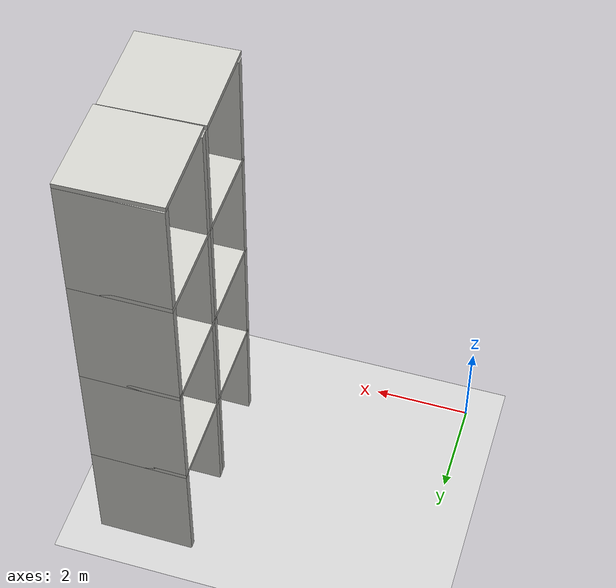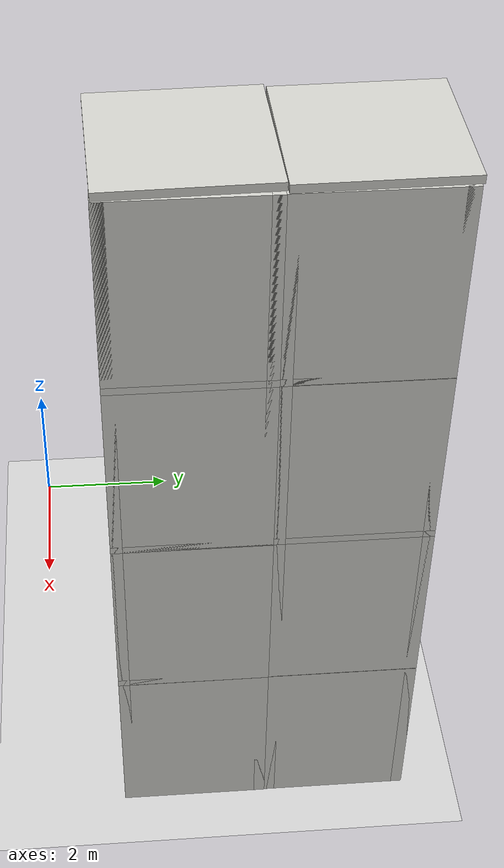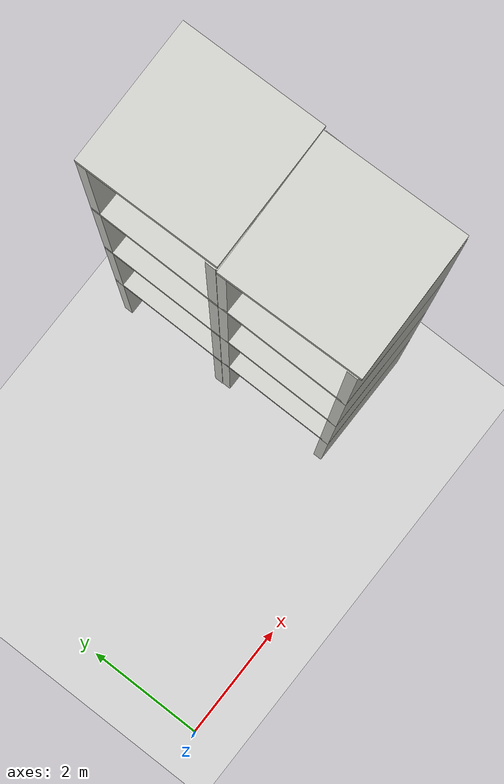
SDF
<sdf version="1.7">
 <world name="default">
  <model name="ground_plane">
   <static>1</static>
   <link name="link">
    <collision name="collision">
     <geometry><plane><normal>0 0 1</normal><size>100 100</size></plane></geometry>
     <surface>
      <contact><collide_bitmask>65535</collide_bitmask></contact>
      <friction><ode><mu>100</mu><mu2>50</mu2></ode></friction>
     </surface>
    </collision>
    <visual name="visual">
     <cast_shadows>0</cast_shadows>
     <geometry><plane><normal>0 0 1</normal><size>100 100</size></plane></geometry>
     <material>
      <script><uri>file://media/materials/scripts/gazebo.material</uri><name>Gazebo/Grey</name></script>
     </material>
    </visual>
   </link>
  </model>
  <model name="twin_4th_building_clone_clone">
   <link name="Floor_1">
    <pose>-1.9225 -0.6325 2.5 0 -0 0</pose>
    <visual name="Floor_1_Visual">
     <pose>0 0 0.05 0 -0 0</pose>
     <geometry><box><size>2 2 0.1</size></box></geometry>
     <material>
      <script><uri>file://media/materials/scripts/gazebo.material</uri><name>Gazebo/CeilingTiled</name></script>
      <ambient>1 1 1 1</ambient>
      <shader type="pixel"/>
      <emissive>0 0 0 1</emissive>
     </material>
     <meta><layer>1</layer></meta>
    </visual>
    <collision name="Floor_1_Collision">
     <pose>0 0 0.05 0 -0 0</pose>
     <geometry><box><size>2 2 0.1</size></box></geometry>
     <surface>
      <friction>
       <ode><mu>1</mu><mu2>1</mu2><fdir1>0 0 0</fdir1><slip1>0</slip1><slip2>0</slip2></ode>
       <torsional>
        <coefficient>1</coefficient>
        <patch_radius>0</patch_radius>
        <surface_radius>0</surface_radius>
        <use_patch_radius>1</use_patch_radius>
        <ode><slip>0</slip></ode>
       </torsional>
      </friction>
      <bounce><restitution_coefficient>0</restitution_coefficient><threshold>1e+06</threshold></bounce>
      <contact>
       <collide_without_contact>0</collide_without_contact>
       <collide_without_contact_bitmask>1</collide_without_contact_bitmask>
       <collide_bitmask>1</collide_bitmask>
       <ode>
        <soft_cfm>0</soft_cfm>
        <soft_erp>0.2</soft_erp>
        <kp>1e+13</kp>
        <kd>1</kd>
        <max_vel>0.01</max_vel>
        <min_depth>0</min_depth>
       </ode>
       <bullet>
        <split_impulse>1</split_impulse>
        <split_impulse_penetration_threshold>-0.01</split_impulse_penetration_threshold>
        <soft_cfm>0</soft_cfm>
        <soft_erp>0.2</soft_erp>
        <kp>1e+13</kp>
        <kd>1</kd>
       </bullet>
      </contact>
     </surface>
    </collision>
   </link>
   <link name="Floor_10">
    <pose>-1.9225 -0.6325 7.5 0 -0 0</pose>
    <visual name="Floor_10_Visual">
     <pose>0 0 0.05 0 -0 0</pose>
     <geometry><box><size>2 2 0.1</size></box></geometry>
     <material>
      <script><uri>file://media/materials/scripts/gazebo.material</uri><name>Gazebo/CeilingTiled</name></script>
      <ambient>1 1 1 1</ambient>
      <shader type="pixel"/>
      <emissive>0 0 0 1</emissive>
     </material>
     <meta><layer>3</layer></meta>
    </visual>
    <collision name="Floor_10_Collision">
     <pose>0 0 0.05 0 -0 0</pose>
     <geometry><box><size>2 2 0.1</size></box></geometry>
     <surface>
      <friction>
       <ode><mu>1</mu><mu2>1</mu2><fdir1>0 0 0</fdir1><slip1>0</slip1><slip2>0</slip2></ode>
       <torsional>
        <coefficient>1</coefficient>
        <patch_radius>0</patch_radius>
        <surface_radius>0</surface_radius>
        <use_patch_radius>1</use_patch_radius>
        <ode><slip>0</slip></ode>
       </torsional>
      </friction>
      <bounce><restitution_coefficient>0</restitution_coefficient><threshold>1e+06</threshold></bounce>
      <contact>
       <collide_without_contact>0</collide_without_contact>
       <collide_without_contact_bitmask>1</collide_without_contact_bitmask>
       <collide_bitmask>1</collide_bitmask>
       <ode>
        <soft_cfm>0</soft_cfm>
        <soft_erp>0.2</soft_erp>
        <kp>1e+13</kp>
        <kd>1</kd>
        <max_vel>0.01</max_vel>
        <min_depth>0</min_depth>
       </ode>
       <bullet>
        <split_impulse>1</split_impulse>
        <split_impulse_penetration_threshold>-0.01</split_impulse_penetration_threshold>
        <soft_cfm>0</soft_cfm>
        <soft_erp>0.2</soft_erp>
        <kp>1e+13</kp>
        <kd>1</kd>
       </bullet>
      </contact>
     </surface>
    </collision>
   </link>
   <link name="Floor_10_clone">
    <pose>-1.91647 -0.637292 10.0203 0 0 -1.55375</pose>
    <visual name="Floor_10_Visual">
     <pose>0 0 0.05 0 -0 0</pose>
     <geometry><box><size>2 2 0.1</size></box></geometry>
     <material>
      <script><uri>file://media/materials/scripts/gazebo.material</uri><name>Gazebo/CeilingTiled</name></script>
      <ambient>1 1 1 1</ambient>
      <shader type="pixel"/>
      <emissive>0 0 0 1</emissive>
     </material>
     <meta><layer>3</layer></meta>
    </visual>
    <collision name="Floor_10_Collision">
     <pose>0 0 0.05 0 -0 0</pose>
     <geometry><box><size>2 2 0.1</size></box></geometry>
     <surface>
      <friction>
       <ode><mu>1</mu><mu2>1</mu2><fdir1>0 0 0</fdir1><slip1>0</slip1><slip2>0</slip2></ode>
       <torsional>
        <coefficient>1</coefficient>
        <patch_radius>0</patch_radius>
        <surface_radius>0</surface_radius>
        <use_patch_radius>1</use_patch_radius>
        <ode><slip>0</slip></ode>
       </torsional>
      </friction>
      <bounce><restitution_coefficient>0</restitution_coefficient><threshold>1e+06</threshold></bounce>
      <contact>
       <collide_without_contact>0</collide_without_contact>
       <collide_without_contact_bitmask>1</collide_without_contact_bitmask>
       <collide_bitmask>1</collide_bitmask>
       <ode>
        <soft_cfm>0</soft_cfm>
        <soft_erp>0.2</soft_erp>
        <kp>1e+13</kp>
        <kd>1</kd>
        <max_vel>0.01</max_vel>
        <min_depth>0</min_depth>
       </ode>
       <bullet>
        <split_impulse>1</split_impulse>
        <split_impulse_penetration_threshold>-0.01</split_impulse_penetration_threshold>
        <soft_cfm>0</soft_cfm>
        <soft_erp>0.2</soft_erp>
        <kp>1e+13</kp>
        <kd>1</kd>
       </bullet>
      </contact>
     </surface>
    </collision>
   </link>
   <link name="Floor_10_clone_clone">
    <pose>-3.93376 -0.629613 10.0203 0 0 -3.11619</pose>
    <visual name="Floor_10_Visual">
     <pose>0 0 0.05 0 -0 0</pose>
     <geometry><box><size>2 2 0.1</size></box></geometry>
     <material>
      <script><uri>file://media/materials/scripts/gazebo.material</uri><name>Gazebo/CeilingTiled</name></script>
      <ambient>1 1 1 1</ambient>
      <shader type="pixel"/>
      <emissive>0 0 0 1</emissive>
     </material>
     <meta><layer>3</layer></meta>
    </visual>
    <collision name="Floor_10_Collision">
     <pose>0 0 0.05 0 -0 0</pose>
     <geometry><box><size>2 2 0.1</size></box></geometry>
     <surface>
      <friction>
       <ode><mu>1</mu><mu2>1</mu2><fdir1>0 0 0</fdir1><slip1>0</slip1><slip2>0</slip2></ode>
       <torsional>
        <coefficient>1</coefficient>
        <patch_radius>0</patch_radius>
        <surface_radius>0</surface_radius>
        <use_patch_radius>1</use_patch_radius>
        <ode><slip>0</slip></ode>
       </torsional>
      </friction>
      <bounce><restitution_coefficient>0</restitution_coefficient><threshold>1e+06</threshold></bounce>
      <contact>
       <collide_without_contact>0</collide_without_contact>
       <collide_without_contact_bitmask>1</collide_without_contact_bitmask>
       <collide_bitmask>1</collide_bitmask>
       <ode>
        <soft_cfm>0</soft_cfm>
        <soft_erp>0.2</soft_erp>
        <kp>1e+13</kp>
        <kd>1</kd>
        <max_vel>0.01</max_vel>
        <min_depth>0</min_depth>
       </ode>
       <bullet>
        <split_impulse>1</split_impulse>
        <split_impulse_penetration_threshold>-0.01</split_impulse_penetration_threshold>
        <soft_cfm>0</soft_cfm>
        <soft_erp>0.2</soft_erp>
        <kp>1e+13</kp>
        <kd>1</kd>
       </bullet>
      </contact>
     </surface>
    </collision>
   </link>
   <link name="Floor_9">
    <pose>-1.9225 -0.6325 5 0 -0 0</pose>
    <visual name="Floor_9_Visual">
     <pose>0 0 0.05 0 -0 0</pose>
     <geometry><box><size>2 2 0.1</size></box></geometry>
     <material>
      <script><uri>file://media/materials/scripts/gazebo.material</uri><name>Gazebo/CeilingTiled</name></script>
      <ambient>1 1 1 1</ambient>
      <shader type="pixel"/>
      <emissive>0 0 0 1</emissive>
     </material>
     <meta><layer>2</layer></meta>
    </visual>
    <collision name="Floor_9_Collision">
     <pose>0 0 0.05 0 -0 0</pose>
     <geometry><box><size>2 2 0.1</size></box></geometry>
     <surface>
      <friction>
       <ode><mu>1</mu><mu2>1</mu2><fdir1>0 0 0</fdir1><slip1>0</slip1><slip2>0</slip2></ode>
       <torsional>
        <coefficient>1</coefficient>
        <patch_radius>0</patch_radius>
        <surface_radius>0</surface_radius>
        <use_patch_radius>1</use_patch_radius>
        <ode><slip>0</slip></ode>
       </torsional>
      </friction>
      <bounce><restitution_coefficient>0</restitution_coefficient><threshold>1e+06</threshold></bounce>
      <contact>
       <collide_without_contact>0</collide_without_contact>
       <collide_without_contact_bitmask>1</collide_without_contact_bitmask>
       <collide_bitmask>1</collide_bitmask>
       <ode>
        <soft_cfm>0</soft_cfm>
        <soft_erp>0.2</soft_erp>
        <kp>1e+13</kp>
        <kd>1</kd>
        <max_vel>0.01</max_vel>
        <min_depth>0</min_depth>
       </ode>
       <bullet>
        <split_impulse>1</split_impulse>
        <split_impulse_penetration_threshold>-0.01</split_impulse_penetration_threshold>
        <soft_cfm>0</soft_cfm>
        <soft_erp>0.2</soft_erp>
        <kp>1e+13</kp>
        <kd>1</kd>
       </bullet>
      </contact>
     </surface>
    </collision>
   </link>
   <link name="Wall_13">
    <pose>-2.8475 -0.6325 0 0 0 -1.5708</pose>
    <visual name="Wall_13_Visual">
     <pose>0 0 1.25 0 -0 0</pose>
     <geometry><box><size>2 0.15 2.5</size></box></geometry>
     <material>
      <script><uri>file://media/materials/scripts/gazebo.material</uri><name>Gazebo/CeilingTiled</name></script>
      <ambient>1 1 1 1</ambient>
      <shader type="pixel"/>
      <emissive>0 0 0 1</emissive>
     </material>
     <meta><layer>0</layer></meta>
    </visual>
    <collision name="Wall_13_Collision">
     <pose>0 0 1.25 0 -0 0</pose>
     <geometry><box><size>2 0.15 2.5</size></box></geometry>
     <surface>
      <friction>
       <ode><mu>1</mu><mu2>1</mu2><fdir1>0 0 0</fdir1><slip1>0</slip1><slip2>0</slip2></ode>
       <torsional>
        <coefficient>1</coefficient>
        <patch_radius>0</patch_radius>
        <surface_radius>0</surface_radius>
        <use_patch_radius>1</use_patch_radius>
        <ode><slip>0</slip></ode>
       </torsional>
      </friction>
      <bounce><restitution_coefficient>0</restitution_coefficient><threshold>1e+06</threshold></bounce>
      <contact>
       <collide_without_contact>0</collide_without_contact>
       <collide_without_contact_bitmask>1</collide_without_contact_bitmask>
       <collide_bitmask>1</collide_bitmask>
       <ode>
        <soft_cfm>0</soft_cfm>
        <soft_erp>0.2</soft_erp>
        <kp>1e+13</kp>
        <kd>1</kd>
        <max_vel>0.01</max_vel>
        <min_depth>0</min_depth>
       </ode>
       <bullet>
        <split_impulse>1</split_impulse>
        <split_impulse_penetration_threshold>-0.01</split_impulse_penetration_threshold>
        <soft_cfm>0</soft_cfm>
        <soft_erp>0.2</soft_erp>
        <kp>1e+13</kp>
        <kd>1</kd>
       </bullet>
      </contact>
     </surface>
    </collision>
   </link>
   <link name="Wall_14">
    <pose>-1.9225 -1.5575 0 0 -0 0</pose>
    <visual name="Wall_14_Visual">
     <pose>0 0 1.25 0 -0 0</pose>
     <geometry><box><size>2 0.15 2.5</size></box></geometry>
     <material>
      <script><uri>file://media/materials/scripts/gazebo.material</uri><name>Gazebo/CeilingTiled</name></script>
      <ambient>1 1 1 1</ambient>
      <shader type="pixel"/>
     </material>
     <meta><layer>0</layer></meta>
    </visual>
    <collision name="Wall_14_Collision">
     <pose>0 0 1.25 0 -0 0</pose>
     <geometry><box><size>2 0.15 2.5</size></box></geometry>
     <surface>
      <friction>
       <ode><mu>1</mu><mu2>1</mu2><fdir1>0 0 0</fdir1><slip1>0</slip1><slip2>0</slip2></ode>
       <torsional>
        <coefficient>1</coefficient>
        <patch_radius>0</patch_radius>
        <surface_radius>0</surface_radius>
        <use_patch_radius>1</use_patch_radius>
        <ode><slip>0</slip></ode>
       </torsional>
      </friction>
      <bounce><restitution_coefficient>0</restitution_coefficient><threshold>1e+06</threshold></bounce>
      <contact>
       <collide_without_contact>0</collide_without_contact>
       <collide_without_contact_bitmask>1</collide_without_contact_bitmask>
       <collide_bitmask>1</collide_bitmask>
       <ode>
        <soft_cfm>0</soft_cfm>
        <soft_erp>0.2</soft_erp>
        <kp>1e+13</kp>
        <kd>1</kd>
        <max_vel>0.01</max_vel>
        <min_depth>0</min_depth>
       </ode>
       <bullet>
        <split_impulse>1</split_impulse>
        <split_impulse_penetration_threshold>-0.01</split_impulse_penetration_threshold>
        <soft_cfm>0</soft_cfm>
        <soft_erp>0.2</soft_erp>
        <kp>1e+13</kp>
        <kd>1</kd>
       </bullet>
      </contact>
     </surface>
    </collision>
   </link>
   <link name="Wall_15">
    <pose>-0.9975 -0.6325 0 0 -0 1.5708</pose>
    <visual name="Wall_15_Visual">
     <pose>0 0 1.25 0 -0 0</pose>
     <geometry><box><size>2 0.15 2.5</size></box></geometry>
     <material>
      <script><uri>file://media/materials/scripts/gazebo.material</uri><name>Gazebo/CeilingTiled</name></script>
      <ambient>1 1 1 1</ambient>
      <shader type="pixel"/>
     </material>
     <meta><layer>0</layer></meta>
    </visual>
    <collision name="Wall_15_Collision">
     <pose>0 0 1.25 0 -0 0</pose>
     <geometry><box><size>2 0.15 2.5</size></box></geometry>
     <surface>
      <friction>
       <ode><mu>1</mu><mu2>1</mu2><fdir1>0 0 0</fdir1><slip1>0</slip1><slip2>0</slip2></ode>
       <torsional>
        <coefficient>1</coefficient>
        <patch_radius>0</patch_radius>
        <surface_radius>0</surface_radius>
        <use_patch_radius>1</use_patch_radius>
        <ode><slip>0</slip></ode>
       </torsional>
      </friction>
      <bounce><restitution_coefficient>0</restitution_coefficient><threshold>1e+06</threshold></bounce>
      <contact>
       <collide_without_contact>0</collide_without_contact>
       <collide_without_contact_bitmask>1</collide_without_contact_bitmask>
       <collide_bitmask>1</collide_bitmask>
       <ode>
        <soft_cfm>0</soft_cfm>
        <soft_erp>0.2</soft_erp>
        <kp>1e+13</kp>
        <kd>1</kd>
        <max_vel>0.01</max_vel>
        <min_depth>0</min_depth>
       </ode>
       <bullet>
        <split_impulse>1</split_impulse>
        <split_impulse_penetration_threshold>-0.01</split_impulse_penetration_threshold>
        <soft_cfm>0</soft_cfm>
        <soft_erp>0.2</soft_erp>
        <kp>1e+13</kp>
        <kd>1</kd>
       </bullet>
      </contact>
     </surface>
    </collision>
   </link>
   <link name="Wall_17">
    <pose>-2.8475 -0.6325 2.5 0 0 -1.5708</pose>
    <visual name="Wall_17_Visual">
     <pose>0 0 1.25 0 -0 0</pose>
     <geometry><box><size>2 0.15 2.5</size></box></geometry>
     <material>
      <script><uri>file://media/materials/scripts/gazebo.material</uri><name>Gazebo/CeilingTiled</name></script>
      <ambient>1 1 1 1</ambient>
      <shader type="pixel"/>
      <emissive>0 0 0 1</emissive>
     </material>
     <meta><layer>1</layer></meta>
    </visual>
    <collision name="Wall_17_Collision">
     <pose>0 0 1.25 0 -0 0</pose>
     <geometry><box><size>2 0.15 2.5</size></box></geometry>
     <surface>
      <friction>
       <ode><mu>1</mu><mu2>1</mu2><fdir1>0 0 0</fdir1><slip1>0</slip1><slip2>0</slip2></ode>
       <torsional>
        <coefficient>1</coefficient>
        <patch_radius>0</patch_radius>
        <surface_radius>0</surface_radius>
        <use_patch_radius>1</use_patch_radius>
        <ode><slip>0</slip></ode>
       </torsional>
      </friction>
      <bounce><restitution_coefficient>0</restitution_coefficient><threshold>1e+06</threshold></bounce>
      <contact>
       <collide_without_contact>0</collide_without_contact>
       <collide_without_contact_bitmask>1</collide_without_contact_bitmask>
       <collide_bitmask>1</collide_bitmask>
       <ode>
        <soft_cfm>0</soft_cfm>
        <soft_erp>0.2</soft_erp>
        <kp>1e+13</kp>
        <kd>1</kd>
        <max_vel>0.01</max_vel>
        <min_depth>0</min_depth>
       </ode>
       <bullet>
        <split_impulse>1</split_impulse>
        <split_impulse_penetration_threshold>-0.01</split_impulse_penetration_threshold>
        <soft_cfm>0</soft_cfm>
        <soft_erp>0.2</soft_erp>
        <kp>1e+13</kp>
        <kd>1</kd>
       </bullet>
      </contact>
     </surface>
    </collision>
   </link>
   <link name="Wall_18">
    <pose>-1.9225 -1.5575 2.5 0 -0 0</pose>
    <visual name="Wall_18_Visual">
     <pose>0 0 1.25 0 -0 0</pose>
     <geometry><box><size>2 0.15 2.5</size></box></geometry>
     <material>
      <script><uri>file://media/materials/scripts/gazebo.material</uri><name>Gazebo/CeilingTiled</name></script>
      <ambient>1 1 1 1</ambient>
      <shader type="pixel"/>
      <emissive>0 0 0 1</emissive>
     </material>
     <meta><layer>1</layer></meta>
    </visual>
    <collision name="Wall_18_Collision">
     <pose>0 0 1.25 0 -0 0</pose>
     <geometry><box><size>2 0.15 2.5</size></box></geometry>
     <surface>
      <friction>
       <ode><mu>1</mu><mu2>1</mu2><fdir1>0 0 0</fdir1><slip1>0</slip1><slip2>0</slip2></ode>
       <torsional>
        <coefficient>1</coefficient>
        <patch_radius>0</patch_radius>
        <surface_radius>0</surface_radius>
        <use_patch_radius>1</use_patch_radius>
        <ode><slip>0</slip></ode>
       </torsional>
      </friction>
      <bounce><restitution_coefficient>0</restitution_coefficient><threshold>1e+06</threshold></bounce>
      <contact>
       <collide_without_contact>0</collide_without_contact>
       <collide_without_contact_bitmask>1</collide_without_contact_bitmask>
       <collide_bitmask>1</collide_bitmask>
       <ode>
        <soft_cfm>0</soft_cfm>
        <soft_erp>0.2</soft_erp>
        <kp>1e+13</kp>
        <kd>1</kd>
        <max_vel>0.01</max_vel>
        <min_depth>0</min_depth>
       </ode>
       <bullet>
        <split_impulse>1</split_impulse>
        <split_impulse_penetration_threshold>-0.01</split_impulse_penetration_threshold>
        <soft_cfm>0</soft_cfm>
        <soft_erp>0.2</soft_erp>
        <kp>1e+13</kp>
        <kd>1</kd>
       </bullet>
      </contact>
     </surface>
    </collision>
   </link>
   <link name="Wall_19">
    <pose>-0.9975 -0.6325 2.5 0 -0 1.5708</pose>
    <visual name="Wall_19_Visual">
     <pose>0 0 1.25 0 -0 0</pose>
     <geometry><box><size>2 0.15 2.5</size></box></geometry>
     <material>
      <script><uri>file://media/materials/scripts/gazebo.material</uri><name>Gazebo/CeilingTiled</name></script>
      <ambient>1 1 1 1</ambient>
      <shader type="pixel"/>
     </material>
     <meta><layer>1</layer></meta>
    </visual>
    <collision name="Wall_19_Collision">
     <pose>0 0 1.25 0 -0 0</pose>
     <geometry><box><size>2 0.15 2.5</size></box></geometry>
     <surface>
      <friction>
       <ode><mu>1</mu><mu2>1</mu2><fdir1>0 0 0</fdir1><slip1>0</slip1><slip2>0</slip2></ode>
       <torsional>
        <coefficient>1</coefficient>
        <patch_radius>0</patch_radius>
        <surface_radius>0</surface_radius>
        <use_patch_radius>1</use_patch_radius>
        <ode><slip>0</slip></ode>
       </torsional>
      </friction>
      <bounce><restitution_coefficient>0</restitution_coefficient><threshold>1e+06</threshold></bounce>
      <contact>
       <collide_without_contact>0</collide_without_contact>
       <collide_without_contact_bitmask>1</collide_without_contact_bitmask>
       <collide_bitmask>1</collide_bitmask>
       <ode>
        <soft_cfm>0</soft_cfm>
        <soft_erp>0.2</soft_erp>
        <kp>1e+13</kp>
        <kd>1</kd>
        <max_vel>0.01</max_vel>
        <min_depth>0</min_depth>
       </ode>
       <bullet>
        <split_impulse>1</split_impulse>
        <split_impulse_penetration_threshold>-0.01</split_impulse_penetration_threshold>
        <soft_cfm>0</soft_cfm>
        <soft_erp>0.2</soft_erp>
        <kp>1e+13</kp>
        <kd>1</kd>
       </bullet>
      </contact>
     </surface>
    </collision>
   </link>
   <link name="Wall_40">
    <pose>-2.8475 -0.6325 5 0 0 -1.5708</pose>
    <visual name="Wall_40_Visual">
     <pose>0 0 1.25 0 -0 0</pose>
     <geometry><box><size>2 0.15 2.5</size></box></geometry>
     <material>
      <script><uri>file://media/materials/scripts/gazebo.material</uri><name>Gazebo/CeilingTiled</name></script>
      <ambient>1 1 1 1</ambient>
      <shader type="pixel"/>
      <emissive>0 0 0 1</emissive>
     </material>
     <meta><layer>2</layer></meta>
    </visual>
    <collision name="Wall_40_Collision">
     <pose>0 0 1.25 0 -0 0</pose>
     <geometry><box><size>2 0.15 2.5</size></box></geometry>
     <surface>
      <friction>
       <ode><mu>1</mu><mu2>1</mu2><fdir1>0 0 0</fdir1><slip1>0</slip1><slip2>0</slip2></ode>
       <torsional>
        <coefficient>1</coefficient>
        <patch_radius>0</patch_radius>
        <surface_radius>0</surface_radius>
        <use_patch_radius>1</use_patch_radius>
        <ode><slip>0</slip></ode>
       </torsional>
      </friction>
      <bounce><restitution_coefficient>0</restitution_coefficient><threshold>1e+06</threshold></bounce>
      <contact>
       <collide_without_contact>0</collide_without_contact>
       <collide_without_contact_bitmask>1</collide_without_contact_bitmask>
       <collide_bitmask>1</collide_bitmask>
       <ode>
        <soft_cfm>0</soft_cfm>
        <soft_erp>0.2</soft_erp>
        <kp>1e+13</kp>
        <kd>1</kd>
        <max_vel>0.01</max_vel>
        <min_depth>0</min_depth>
       </ode>
       <bullet>
        <split_impulse>1</split_impulse>
        <split_impulse_penetration_threshold>-0.01</split_impulse_penetration_threshold>
        <soft_cfm>0</soft_cfm>
        <soft_erp>0.2</soft_erp>
        <kp>1e+13</kp>
        <kd>1</kd>
       </bullet>
      </contact>
     </surface>
    </collision>
   </link>
   <link name="Wall_41">
    <pose>-1.9225 -1.5575 5 0 -0 0</pose>
    <visual name="Wall_41_Visual">
     <pose>0 0 1.25 0 -0 0</pose>
     <geometry><box><size>2 0.15 2.5</size></box></geometry>
     <material>
      <script><uri>file://media/materials/scripts/gazebo.material</uri><name>Gazebo/CeilingTiled</name></script>
      <ambient>1 1 1 1</ambient>
      <shader type="pixel"/>
      <emissive>0 0 0 1</emissive>
     </material>
     <meta><layer>2</layer></meta>
    </visual>
    <collision name="Wall_41_Collision">
     <pose>0 0 1.25 0 -0 0</pose>
     <geometry><box><size>2 0.15 2.5</size></box></geometry>
     <surface>
      <friction>
       <ode><mu>1</mu><mu2>1</mu2><fdir1>0 0 0</fdir1><slip1>0</slip1><slip2>0</slip2></ode>
       <torsional>
        <coefficient>1</coefficient>
        <patch_radius>0</patch_radius>
        <surface_radius>0</surface_radius>
        <use_patch_radius>1</use_patch_radius>
        <ode><slip>0</slip></ode>
       </torsional>
      </friction>
      <bounce><restitution_coefficient>0</restitution_coefficient><threshold>1e+06</threshold></bounce>
      <contact>
       <collide_without_contact>0</collide_without_contact>
       <collide_without_contact_bitmask>1</collide_without_contact_bitmask>
       <collide_bitmask>1</collide_bitmask>
       <ode>
        <soft_cfm>0</soft_cfm>
        <soft_erp>0.2</soft_erp>
        <kp>1e+13</kp>
        <kd>1</kd>
        <max_vel>0.01</max_vel>
        <min_depth>0</min_depth>
       </ode>
       <bullet>
        <split_impulse>1</split_impulse>
        <split_impulse_penetration_threshold>-0.01</split_impulse_penetration_threshold>
        <soft_cfm>0</soft_cfm>
        <soft_erp>0.2</soft_erp>
        <kp>1e+13</kp>
        <kd>1</kd>
       </bullet>
      </contact>
     </surface>
    </collision>
   </link>
   <link name="Wall_42">
    <pose>-0.9975 -0.6325 5 0 -0 1.5708</pose>
    <visual name="Wall_42_Visual">
     <pose>0 0 1.25 0 -0 0</pose>
     <geometry><box><size>2 0.15 2.5</size></box></geometry>
     <material>
      <script><uri>file://media/materials/scripts/gazebo.material</uri><name>Gazebo/CeilingTiled</name></script>
      <ambient>1 1 1 1</ambient>
      <shader type="pixel"/>
     </material>
     <meta><layer>2</layer></meta>
    </visual>
    <collision name="Wall_42_Collision">
     <pose>0 0 1.25 0 -0 0</pose>
     <geometry><box><size>2 0.15 2.5</size></box></geometry>
     <surface>
      <friction>
       <ode><mu>1</mu><mu2>1</mu2><fdir1>0 0 0</fdir1><slip1>0</slip1><slip2>0</slip2></ode>
       <torsional>
        <coefficient>1</coefficient>
        <patch_radius>0</patch_radius>
        <surface_radius>0</surface_radius>
        <use_patch_radius>1</use_patch_radius>
        <ode><slip>0</slip></ode>
       </torsional>
      </friction>
      <bounce><restitution_coefficient>0</restitution_coefficient><threshold>1e+06</threshold></bounce>
      <contact>
       <collide_without_contact>0</collide_without_contact>
       <collide_without_contact_bitmask>1</collide_without_contact_bitmask>
       <collide_bitmask>1</collide_bitmask>
       <ode>
        <soft_cfm>0</soft_cfm>
        <soft_erp>0.2</soft_erp>
        <kp>1e+13</kp>
        <kd>1</kd>
        <max_vel>0.01</max_vel>
        <min_depth>0</min_depth>
       </ode>
       <bullet>
        <split_impulse>1</split_impulse>
        <split_impulse_penetration_threshold>-0.01</split_impulse_penetration_threshold>
        <soft_cfm>0</soft_cfm>
        <soft_erp>0.2</soft_erp>
        <kp>1e+13</kp>
        <kd>1</kd>
       </bullet>
      </contact>
     </surface>
    </collision>
   </link>
   <link name="Wall_43">
    <pose>-2.8475 -0.6325 7.5 0 0 -1.5708</pose>
    <visual name="Wall_43_Visual">
     <pose>0 0 1.25 0 -0 0</pose>
     <geometry><box><size>2 0.15 2.5</size></box></geometry>
     <material>
      <script><uri>file://media/materials/scripts/gazebo.material</uri><name>Gazebo/CeilingTiled</name></script>
      <ambient>1 1 1 1</ambient>
      <shader type="pixel"/>
      <emissive>0 0 0 1</emissive>
     </material>
     <meta><layer>3</layer></meta>
    </visual>
    <collision name="Wall_43_Collision">
     <pose>0 0 1.25 0 -0 0</pose>
     <geometry><box><size>2 0.15 2.5</size></box></geometry>
     <surface>
      <friction>
       <ode><mu>1</mu><mu2>1</mu2><fdir1>0 0 0</fdir1><slip1>0</slip1><slip2>0</slip2></ode>
       <torsional>
        <coefficient>1</coefficient>
        <patch_radius>0</patch_radius>
        <surface_radius>0</surface_radius>
        <use_patch_radius>1</use_patch_radius>
        <ode><slip>0</slip></ode>
       </torsional>
      </friction>
      <bounce><restitution_coefficient>0</restitution_coefficient><threshold>1e+06</threshold></bounce>
      <contact>
       <collide_without_contact>0</collide_without_contact>
       <collide_without_contact_bitmask>1</collide_without_contact_bitmask>
       <collide_bitmask>1</collide_bitmask>
       <ode>
        <soft_cfm>0</soft_cfm>
        <soft_erp>0.2</soft_erp>
        <kp>1e+13</kp>
        <kd>1</kd>
        <max_vel>0.01</max_vel>
        <min_depth>0</min_depth>
       </ode>
       <bullet>
        <split_impulse>1</split_impulse>
        <split_impulse_penetration_threshold>-0.01</split_impulse_penetration_threshold>
        <soft_cfm>0</soft_cfm>
        <soft_erp>0.2</soft_erp>
        <kp>1e+13</kp>
        <kd>1</kd>
       </bullet>
      </contact>
     </surface>
    </collision>
   </link>
   <link name="Wall_44">
    <pose>-1.9225 -1.5575 7.5 0 -0 0</pose>
    <visual name="Wall_44_Visual">
     <pose>0 0 1.25 0 -0 0</pose>
     <geometry><box><size>2 0.15 2.5</size></box></geometry>
     <material>
      <script><uri>file://media/materials/scripts/gazebo.material</uri><name>Gazebo/CeilingTiled</name></script>
      <ambient>1 1 1 1</ambient>
      <shader type="pixel"/>
      <emissive>0 0 0 1</emissive>
     </material>
     <meta><layer>3</layer></meta>
    </visual>
    <collision name="Wall_44_Collision">
     <pose>0 0 1.25 0 -0 0</pose>
     <geometry><box><size>2 0.15 2.5</size></box></geometry>
     <surface>
      <friction>
       <ode><mu>1</mu><mu2>1</mu2><fdir1>0 0 0</fdir1><slip1>0</slip1><slip2>0</slip2></ode>
       <torsional>
        <coefficient>1</coefficient>
        <patch_radius>0</patch_radius>
        <surface_radius>0</surface_radius>
        <use_patch_radius>1</use_patch_radius>
        <ode><slip>0</slip></ode>
       </torsional>
      </friction>
      <bounce><restitution_coefficient>0</restitution_coefficient><threshold>1e+06</threshold></bounce>
      <contact>
       <collide_without_contact>0</collide_without_contact>
       <collide_without_contact_bitmask>1</collide_without_contact_bitmask>
       <collide_bitmask>1</collide_bitmask>
       <ode>
        <soft_cfm>0</soft_cfm>
        <soft_erp>0.2</soft_erp>
        <kp>1e+13</kp>
        <kd>1</kd>
        <max_vel>0.01</max_vel>
        <min_depth>0</min_depth>
       </ode>
       <bullet>
        <split_impulse>1</split_impulse>
        <split_impulse_penetration_threshold>-0.01</split_impulse_penetration_threshold>
        <soft_cfm>0</soft_cfm>
        <soft_erp>0.2</soft_erp>
        <kp>1e+13</kp>
        <kd>1</kd>
       </bullet>
      </contact>
     </surface>
    </collision>
   </link>
   <link name="Wall_45">
    <pose>-0.9975 -0.6325 7.5 0 -0 1.5708</pose>
    <visual name="Wall_45_Visual">
     <pose>0 0 1.25 0 -0 0</pose>
     <geometry><box><size>2 0.15 2.5</size></box></geometry>
     <material>
      <script><uri>file://media/materials/scripts/gazebo.material</uri><name>Gazebo/CeilingTiled</name></script>
      <ambient>1 1 1 1</ambient>
      <shader type="pixel"/>
     </material>
     <meta><layer>3</layer></meta>
    </visual>
    <collision name="Wall_45_Collision">
     <pose>0 0 1.25 0 -0 0</pose>
     <geometry><box><size>2 0.15 2.5</size></box></geometry>
     <surface>
      <friction>
       <ode><mu>1</mu><mu2>1</mu2><fdir1>0 0 0</fdir1><slip1>0</slip1><slip2>0</slip2></ode>
       <torsional>
        <coefficient>1</coefficient>
        <patch_radius>0</patch_radius>
        <surface_radius>0</surface_radius>
        <use_patch_radius>1</use_patch_radius>
        <ode><slip>0</slip></ode>
       </torsional>
      </friction>
      <bounce><restitution_coefficient>0</restitution_coefficient><threshold>1e+06</threshold></bounce>
      <contact>
       <collide_without_contact>0</collide_without_contact>
       <collide_without_contact_bitmask>1</collide_without_contact_bitmask>
       <collide_bitmask>1</collide_bitmask>
       <ode>
        <soft_cfm>0</soft_cfm>
        <soft_erp>0.2</soft_erp>
        <kp>1e+13</kp>
        <kd>1</kd>
        <max_vel>0.01</max_vel>
        <min_depth>0</min_depth>
       </ode>
       <bullet>
        <split_impulse>1</split_impulse>
        <split_impulse_penetration_threshold>-0.01</split_impulse_penetration_threshold>
        <soft_cfm>0</soft_cfm>
        <soft_erp>0.2</soft_erp>
        <kp>1e+13</kp>
        <kd>1</kd>
       </bullet>
      </contact>
     </surface>
    </collision>
   </link>
   <model name="4th_building">
    <pose>-1.99386 -0.00682 0 0 -0 0</pose>
    <link name="Floor_1">
     <collision name="Floor_1_Collision">
      <geometry><box><size>2 2 0.1</size></box></geometry>
      <pose>0 0 0.05 0 -0 0</pose>
     </collision>
     <visual name="Floor_1_Visual">
      <pose>0 0 0.05 0 -0 0</pose>
      <geometry><box><size>2 2 0.1</size></box></geometry>
      <material>
       <script><uri>file://media/materials/scripts/gazebo.material</uri><name>Gazebo/CeilingTiled</name></script>
       <ambient>1 1 1 1</ambient>
      </material>
      <meta><layer>1</layer></meta>
     </visual>
     <pose>-1.9225 -0.6325 2.5 0 -0 0</pose>
    </link>
    <link name="Floor_10">
     <collision name="Floor_10_Collision">
      <geometry><box><size>2 2 0.1</size></box></geometry>
      <pose>0 0 0.05 0 -0 0</pose>
     </collision>
     <visual name="Floor_10_Visual">
      <pose>0 0 0.05 0 -0 0</pose>
      <geometry><box><size>2 2 0.1</size></box></geometry>
      <material>
       <script><uri>file://media/materials/scripts/gazebo.material</uri><name>Gazebo/CeilingTiled</name></script>
       <ambient>1 1 1 1</ambient>
      </material>
      <meta><layer>3</layer></meta>
     </visual>
     <pose>-1.9225 -0.6325 7.5 0 -0 0</pose>
    </link>
    <link name="Floor_9">
     <collision name="Floor_9_Collision">
      <geometry><box><size>2 2 0.1</size></box></geometry>
      <pose>0 0 0.05 0 -0 0</pose>
     </collision>
     <visual name="Floor_9_Visual">
      <pose>0 0 0.05 0 -0 0</pose>
      <geometry><box><size>2 2 0.1</size></box></geometry>
      <material>
       <script><uri>file://media/materials/scripts/gazebo.material</uri><name>Gazebo/CeilingTiled</name></script>
       <ambient>1 1 1 1</ambient>
      </material>
      <meta><layer>2</layer></meta>
     </visual>
     <pose>-1.9225 -0.6325 5 0 -0 0</pose>
    </link>
    <link name="Wall_13">
     <collision name="Wall_13_Collision">
      <geometry><box><size>2 0.15 2.5</size></box></geometry>
      <pose>0 0 1.25 0 -0 0</pose>
     </collision>
     <visual name="Wall_13_Visual">
      <pose>0 0 1.25 0 -0 0</pose>
      <geometry><box><size>2 0.15 2.5</size></box></geometry>
      <material>
       <script><uri>file://media/materials/scripts/gazebo.material</uri><name>Gazebo/CeilingTiled</name></script>
       <ambient>1 1 1 1</ambient>
      </material>
      <meta><layer>0</layer></meta>
     </visual>
     <pose>-2.8475 -0.6325 0 0 -0 -1.5708</pose>
    </link>
    <link name="Wall_14">
     <collision name="Wall_14_Collision">
      <geometry><box><size>2 0.15 2.5</size></box></geometry>
      <pose>0 0 1.25 0 -0 0</pose>
     </collision>
     <visual name="Wall_14_Visual">
      <pose>0 0 1.25 0 -0 0</pose>
      <geometry><box><size>2 0.15 2.5</size></box></geometry>
      <material>
       <script><uri>file://media/materials/scripts/gazebo.material</uri><name>Gazebo/CeilingTiled</name></script>
       <ambient>1 1 1 1</ambient>
      </material>
      <meta><layer>0</layer></meta>
     </visual>
     <pose>-1.9225 -1.5575 0 0 -0 0</pose>
    </link>
    <link name="Wall_15">
     <collision name="Wall_15_Collision">
      <geometry><box><size>2 0.15 2.5</size></box></geometry>
      <pose>0 0 1.25 0 -0 0</pose>
     </collision>
     <visual name="Wall_15_Visual">
      <pose>0 0 1.25 0 -0 0</pose>
      <geometry><box><size>2 0.15 2.5</size></box></geometry>
      <material>
       <script><uri>file://media/materials/scripts/gazebo.material</uri><name>Gazebo/CeilingTiled</name></script>
       <ambient>1 1 1 1</ambient>
      </material>
      <meta><layer>0</layer></meta>
     </visual>
     <pose>-0.9975 -0.6325 0 0 -0 1.5708</pose>
    </link>
    <link name="Wall_17">
     <collision name="Wall_17_Collision">
      <geometry><box><size>2 0.15 2.5</size></box></geometry>
      <pose>0 0 1.25 0 -0 0</pose>
     </collision>
     <visual name="Wall_17_Visual">
      <pose>0 0 1.25 0 -0 0</pose>
      <geometry><box><size>2 0.15 2.5</size></box></geometry>
      <material>
       <script><uri>file://media/materials/scripts/gazebo.material</uri><name>Gazebo/CeilingTiled</name></script>
       <ambient>1 1 1 1</ambient>
      </material>
      <meta><layer>1</layer></meta>
     </visual>
     <pose>-2.8475 -0.6325 2.5 0 -0 -1.5708</pose>
    </link>
    <link name="Wall_18">
     <collision name="Wall_18_Collision">
      <geometry><box><size>2 0.15 2.5</size></box></geometry>
      <pose>0 0 1.25 0 -0 0</pose>
     </collision>
     <visual name="Wall_18_Visual">
      <pose>0 0 1.25 0 -0 0</pose>
      <geometry><box><size>2 0.15 2.5</size></box></geometry>
      <material>
       <script><uri>file://media/materials/scripts/gazebo.material</uri><name>Gazebo/CeilingTiled</name></script>
       <ambient>1 1 1 1</ambient>
      </material>
      <meta><layer>1</layer></meta>
     </visual>
     <pose>-1.9225 -1.5575 2.5 0 -0 0</pose>
    </link>
    <link name="Wall_19">
     <collision name="Wall_19_Collision">
      <geometry><box><size>2 0.15 2.5</size></box></geometry>
      <pose>0 0 1.25 0 -0 0</pose>
     </collision>
     <visual name="Wall_19_Visual">
      <pose>0 0 1.25 0 -0 0</pose>
      <geometry><box><size>2 0.15 2.5</size></box></geometry>
      <material>
       <script><uri>file://media/materials/scripts/gazebo.material</uri><name>Gazebo/CeilingTiled</name></script>
       <ambient>1 1 1 1</ambient>
      </material>
      <meta><layer>1</layer></meta>
     </visual>
     <pose>-0.9975 -0.6325 2.5 0 -0 1.5708</pose>
    </link>
    <link name="Wall_40">
     <collision name="Wall_40_Collision">
      <geometry><box><size>2 0.15 2.5</size></box></geometry>
      <pose>0 0 1.25 0 -0 0</pose>
     </collision>
     <visual name="Wall_40_Visual">
      <pose>0 0 1.25 0 -0 0</pose>
      <geometry><box><size>2 0.15 2.5</size></box></geometry>
      <material>
       <script><uri>file://media/materials/scripts/gazebo.material</uri><name>Gazebo/CeilingTiled</name></script>
       <ambient>1 1 1 1</ambient>
      </material>
      <meta><layer>2</layer></meta>
     </visual>
     <pose>-2.8475 -0.6325 5 0 -0 -1.5708</pose>
    </link>
    <link name="Wall_41">
     <collision name="Wall_41_Collision">
      <geometry><box><size>2 0.15 2.5</size></box></geometry>
      <pose>0 0 1.25 0 -0 0</pose>
     </collision>
     <visual name="Wall_41_Visual">
      <pose>0 0 1.25 0 -0 0</pose>
      <geometry><box><size>2 0.15 2.5</size></box></geometry>
      <material>
       <script><uri>file://media/materials/scripts/gazebo.material</uri><name>Gazebo/CeilingTiled</name></script>
       <ambient>1 1 1 1</ambient>
      </material>
      <meta><layer>2</layer></meta>
     </visual>
     <pose>-1.9225 -1.5575 5 0 -0 0</pose>
    </link>
    <link name="Wall_42">
     <collision name="Wall_42_Collision">
      <geometry><box><size>2 0.15 2.5</size></box></geometry>
      <pose>0 0 1.25 0 -0 0</pose>
     </collision>
     <visual name="Wall_42_Visual">
      <pose>0 0 1.25 0 -0 0</pose>
      <geometry><box><size>2 0.15 2.5</size></box></geometry>
      <material>
       <script><uri>file://media/materials/scripts/gazebo.material</uri><name>Gazebo/CeilingTiled</name></script>
       <ambient>1 1 1 1</ambient>
      </material>
      <meta><layer>2</layer></meta>
     </visual>
     <pose>-0.9975 -0.6325 5 0 -0 1.5708</pose>
    </link>
    <link name="Wall_43">
     <collision name="Wall_43_Collision">
      <geometry><box><size>2 0.15 2.5</size></box></geometry>
      <pose>0 0 1.25 0 -0 0</pose>
     </collision>
     <visual name="Wall_43_Visual">
      <pose>0 0 1.25 0 -0 0</pose>
      <geometry><box><size>2 0.15 2.5</size></box></geometry>
      <material>
       <script><uri>file://media/materials/scripts/gazebo.material</uri><name>Gazebo/CeilingTiled</name></script>
       <ambient>1 1 1 1</ambient>
      </material>
      <meta><layer>3</layer></meta>
     </visual>
     <pose>-2.8475 -0.6325 7.5 0 -0 -1.5708</pose>
    </link>
    <link name="Wall_44">
     <collision name="Wall_44_Collision">
      <geometry><box><size>2 0.15 2.5</size></box></geometry>
      <pose>0 0 1.25 0 -0 0</pose>
     </collision>
     <visual name="Wall_44_Visual">
      <pose>0 0 1.25 0 -0 0</pose>
      <geometry><box><size>2 0.15 2.5</size></box></geometry>
      <material>
       <script><uri>file://media/materials/scripts/gazebo.material</uri><name>Gazebo/CeilingTiled</name></script>
       <ambient>1 1 1 1</ambient>
      </material>
      <meta><layer>3</layer></meta>
     </visual>
     <pose>-1.9225 -1.5575 7.5 0 -0 0</pose>
    </link>
    <link name="Wall_45">
     <collision name="Wall_45_Collision">
      <geometry><box><size>2 0.15 2.5</size></box></geometry>
      <pose>0 0 1.25 0 -0 0</pose>
     </collision>
     <visual name="Wall_45_Visual">
      <pose>0 0 1.25 0 -0 0</pose>
      <geometry><box><size>2 0.15 2.5</size></box></geometry>
      <material>
       <script><uri>file://media/materials/scripts/gazebo.material</uri><name>Gazebo/CeilingTiled</name></script>
       <ambient>1 1 1 1</ambient>
      </material>
      <meta><layer>3</layer></meta>
     </visual>
     <pose>-0.9975 -0.6325 7.5 0 -0 1.5708</pose>
    </link>
    <static>1</static>
   </model>
   <joint name="Wall_13_JOINT_4" type="revolute">
    <parent>Wall_13</parent>
    <child>4th_building::Wall_15</child>
    <axis>
     <xyz>1 0 0</xyz>
     <limit>
      <lower>-1.79769e+308</lower>
      <upper>1.79769e+308</upper>
      <effort>-1</effort>
      <velocity>-1</velocity>
     </limit>
     <dynamics>
      <spring_reference>0</spring_reference>
      <spring_stiffness>0</spring_stiffness>
      <damping>0</damping>
      <friction>0</friction>
     </dynamics>
    </axis>
    <physics>
     <ode><limit><cfm>0</cfm><erp>0.2</erp></limit><suspension><cfm>0</cfm><erp>0.2</erp></suspension></ode>
    </physics>
   </joint>
   <joint name="Wall_17_JOINT_3" type="revolute">
    <parent>Wall_17</parent>
    <child>4th_building::Wall_19</child>
    <axis>
     <xyz>1 0 0</xyz>
     <limit>
      <lower>-1.79769e+308</lower>
      <upper>1.79769e+308</upper>
      <effort>-1</effort>
      <velocity>-1</velocity>
     </limit>
     <dynamics>
      <spring_reference>0</spring_reference>
      <spring_stiffness>0</spring_stiffness>
      <damping>0</damping>
      <friction>0</friction>
     </dynamics>
    </axis>
    <physics>
     <ode><limit><cfm>0</cfm><erp>0.2</erp></limit><suspension><cfm>0</cfm><erp>0.2</erp></suspension></ode>
    </physics>
   </joint>
   <joint name="Wall_40_JOINT_2" type="revolute">
    <parent>Wall_40</parent>
    <child>4th_building::Wall_42</child>
    <axis>
     <xyz>1 0 0</xyz>
     <limit>
      <lower>-1.79769e+308</lower>
      <upper>1.79769e+308</upper>
      <effort>-1</effort>
      <velocity>-1</velocity>
     </limit>
     <dynamics>
      <spring_reference>0</spring_reference>
      <spring_stiffness>0</spring_stiffness>
      <damping>0</damping>
      <friction>0</friction>
     </dynamics>
    </axis>
    <physics>
     <ode><limit><cfm>0</cfm><erp>0.2</erp></limit><suspension><cfm>0</cfm><erp>0.2</erp></suspension></ode>
    </physics>
   </joint>
   <joint name="Wall_43_JOINT_1" type="fixed">
    <parent>Wall_43</parent>
    <child>4th_building::Wall_45</child>
    <physics>
     <ode><limit><cfm>0</cfm><erp>0.2</erp></limit><suspension><cfm>0</cfm><erp>0.2</erp></suspension></ode>
    </physics>
   </joint>
   <static>1</static>
   <pose>5 5.99826 0 0 -0 1.57</pose>
  </model>
  <model name="WayPoint1_prac">
   <static>1</static>
   <link name="link">
    <collision name="collision"><geometry><box><size>0.75 0.01 0.75</size></box></geometry></collision>
    <visual name="visual">
     <geometry><box><size>0.75 0.01 0.75</size></box></geometry>
     <material>
      <script>
       <uri>model://WayPoint1_prac/materials/scripts</uri>
       <uri>model://WayPoint1_prac/materials/textures</uri>
       <name>vrc/WayPoint1_prac</name>
      </script>
     </material>
    </visual>
   </link>
   <pose>5.7 4 1.85 0 0 -1.57</pose>
  </model>
  <model name="WayPoint1_prac2">
   <static>1</static>
   <link name="link">
    <collision name="collision"><geometry><box><size>0.75 0.01 0.75</size></box></geometry></collision>
    <visual name="visual">
     <geometry><box><size>0.75 0.01 0.75</size></box></geometry>
     <material>
      <script>
       <uri>model://WayPoint1_prac2/materials/scripts</uri>
       <uri>model://WayPoint1_prac2/materials/textures</uri>
       <name>vrc/WayPoint1_prac2</name>
      </script>
     </material>
    </visual>
   </link>
   <pose>5.7 4 4.4 0 0 -1.57</pose>
  </model>
  <model name="WayPoint2_prac">
   <static>1</static>
   <link name="link">
    <collision name="collision"><geometry><box><size>0.75 0.01 0.75</size></box></geometry></collision>
    <visual name="visual">
     <geometry><box><size>0.75 0.01 0.75</size></box></geometry>
     <material>
      <script>
       <uri>model://WayPoint2_prac/materials/scripts</uri>
       <uri>model://WayPoint2_prac/materials/textures</uri>
       <name>vrc/WayPoint2_prac</name>
      </script>
     </material>
    </visual>
   </link>
   <pose>5.7 4 6.9 0 0 -1.57</pose>
  </model>
  <model name="WayPoint2_prac2">
   <static>1</static>
   <link name="link">
    <collision name="collision"><geometry><box><size>0.75 0.01 0.75</size></box></geometry></collision>
    <visual name="visual">
     <geometry><box><size>0.75 0.01 0.75</size></box></geometry>
     <material>
      <script>
       <uri>model://WayPoint2_prac2/materials/scripts</uri>
       <uri>model://WayPoint2_prac2/materials/textures</uri>
       <name>vrc/WayPoint2_prac2</name>
      </script>
     </material>
    </visual>
   </link>
   <pose>5.7 4 9.45 0 0 -1.57</pose>
  </model>
 </world>
</sdf>
